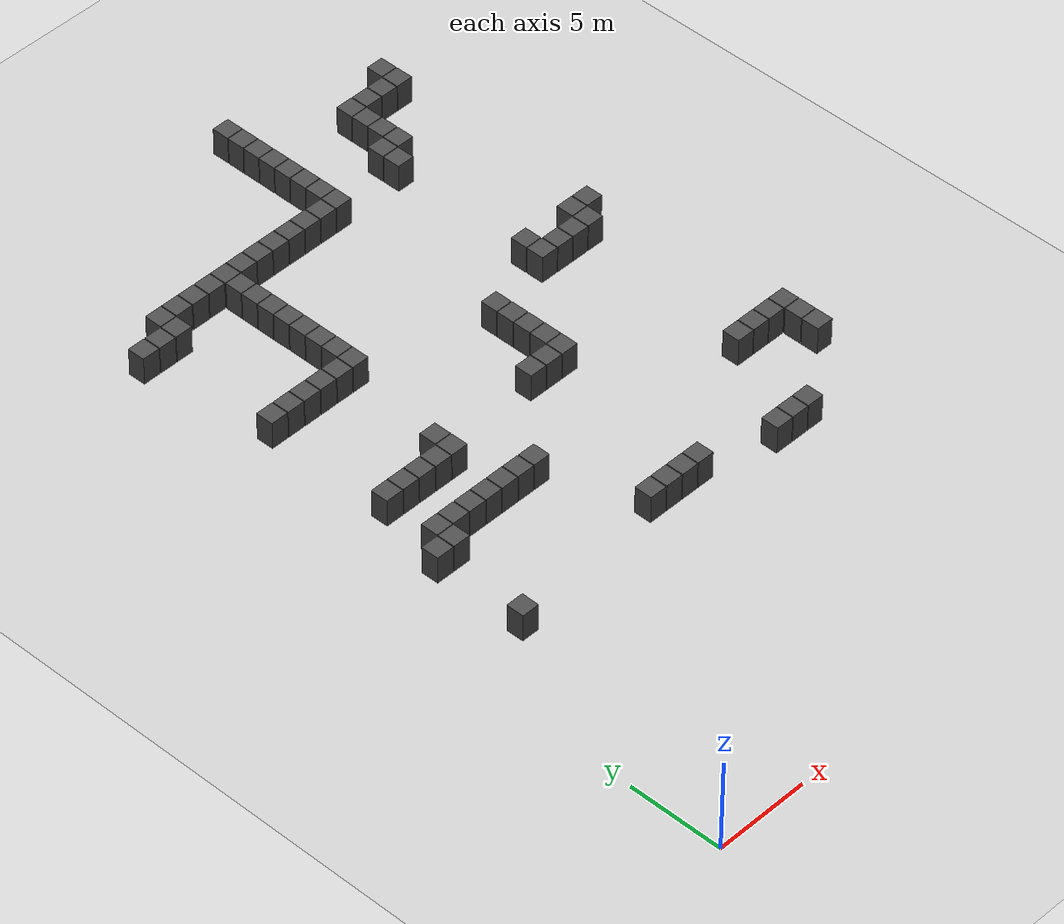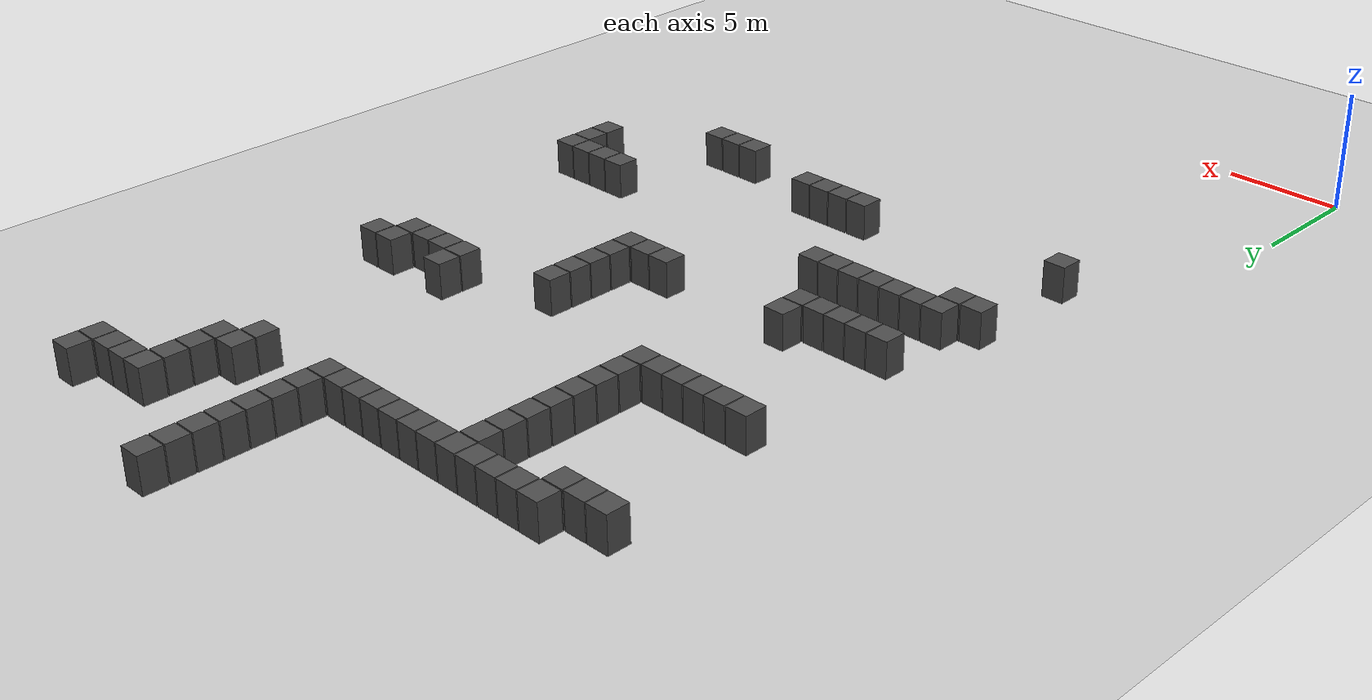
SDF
<sdf version="1.6">
 <world name="maze_world">
  <model name="ground_plane">
   <static>true</static>
   <pose>25.0 25.0 0 0 0 0</pose>
   <link name="link">
    <collision name="collision">
     <geometry><plane><normal>0 0 1</normal><size>50.0 50.0</size></plane></geometry>
    </collision>
    <visual name="visual">
     <geometry><plane><normal>0 0 1</normal><size>50.0 50.0</size></plane></geometry>
     <material><ambient>0.8 0.8 0.8 1</ambient><diffuse>0.8 0.8 0.8 1</diffuse></material>
    </visual>
   </link>
  </model>
  <model name="wall_4">
   <static>true</static>
   <pose>16.500 45.500 0.750 0 0 0</pose>
   <link name="link">
    <collision name="collision"><geometry><box><size>0.950 0.950 1.500</size></box></geometry></collision>
    <visual name="visual">
     <geometry><box><size>0.950 0.950 1.500</size></box></geometry>
     <material><ambient>0.2 0.2 0.2 1</ambient><diffuse>0.3 0.3 0.3 1</diffuse></material>
    </visual>
   </link>
  </model>
  <model name="wall_6">
   <static>true</static>
   <pose>16.500 44.500 0.750 0 0 0</pose>
   <link name="link">
    <collision name="collision"><geometry><box><size>0.950 0.950 1.500</size></box></geometry></collision>
    <visual name="visual">
     <geometry><box><size>0.950 0.950 1.500</size></box></geometry>
     <material><ambient>0.2 0.2 0.2 1</ambient><diffuse>0.3 0.3 0.3 1</diffuse></material>
    </visual>
   </link>
  </model>
  <model name="wall_8">
   <static>true</static>
   <pose>16.500 43.500 0.750 0 0 0</pose>
   <link name="link">
    <collision name="collision"><geometry><box><size>0.950 0.950 1.500</size></box></geometry></collision>
    <visual name="visual">
     <geometry><box><size>0.950 0.950 1.500</size></box></geometry>
     <material><ambient>0.2 0.2 0.2 1</ambient><diffuse>0.3 0.3 0.3 1</diffuse></material>
    </visual>
   </link>
  </model>
  <model name="wall_9">
   <static>true</static>
   <pose>24.500 43.500 0.750 0 0 0</pose>
   <link name="link">
    <collision name="collision"><geometry><box><size>0.950 0.950 1.500</size></box></geometry></collision>
    <visual name="visual">
     <geometry><box><size>0.950 0.950 1.500</size></box></geometry>
     <material><ambient>0.2 0.2 0.2 1</ambient><diffuse>0.3 0.3 0.3 1</diffuse></material>
    </visual>
   </link>
  </model>
  <model name="wall_22">
   <static>true</static>
   <pose>16.500 42.500 0.750 0 0 0</pose>
   <link name="link">
    <collision name="collision"><geometry><box><size>0.950 0.950 1.500</size></box></geometry></collision>
    <visual name="visual">
     <geometry><box><size>0.950 0.950 1.500</size></box></geometry>
     <material><ambient>0.2 0.2 0.2 1</ambient><diffuse>0.3 0.3 0.3 1</diffuse></material>
    </visual>
   </link>
  </model>
  <model name="wall_23">
   <static>true</static>
   <pose>21.500 42.500 0.750 0 0 0</pose>
   <link name="link">
    <collision name="collision"><geometry><box><size>0.950 0.950 1.500</size></box></geometry></collision>
    <visual name="visual">
     <geometry><box><size>0.950 0.950 1.500</size></box></geometry>
     <material><ambient>0.2 0.2 0.2 1</ambient><diffuse>0.3 0.3 0.3 1</diffuse></material>
    </visual>
   </link>
  </model>
  <model name="wall_24">
   <static>true</static>
   <pose>22.500 42.500 0.750 0 0 0</pose>
   <link name="link">
    <collision name="collision"><geometry><box><size>0.950 0.950 1.500</size></box></geometry></collision>
    <visual name="visual">
     <geometry><box><size>0.950 0.950 1.500</size></box></geometry>
     <material><ambient>0.2 0.2 0.2 1</ambient><diffuse>0.3 0.3 0.3 1</diffuse></material>
    </visual>
   </link>
  </model>
  <model name="wall_25">
   <static>true</static>
   <pose>23.500 42.500 0.750 0 0 0</pose>
   <link name="link">
    <collision name="collision"><geometry><box><size>0.950 0.950 1.500</size></box></geometry></collision>
    <visual name="visual">
     <geometry><box><size>0.950 0.950 1.500</size></box></geometry>
     <material><ambient>0.2 0.2 0.2 1</ambient><diffuse>0.3 0.3 0.3 1</diffuse></material>
    </visual>
   </link>
  </model>
  <model name="wall_26">
   <static>true</static>
   <pose>24.500 42.500 0.750 0 0 0</pose>
   <link name="link">
    <collision name="collision"><geometry><box><size>0.950 0.950 1.500</size></box></geometry></collision>
    <visual name="visual">
     <geometry><box><size>0.950 0.950 1.500</size></box></geometry>
     <material><ambient>0.2 0.2 0.2 1</ambient><diffuse>0.3 0.3 0.3 1</diffuse></material>
    </visual>
   </link>
  </model>
  <model name="wall_28">
   <static>true</static>
   <pose>16.500 41.500 0.750 0 0 0</pose>
   <link name="link">
    <collision name="collision"><geometry><box><size>0.950 0.950 1.500</size></box></geometry></collision>
    <visual name="visual">
     <geometry><box><size>0.950 0.950 1.500</size></box></geometry>
     <material><ambient>0.2 0.2 0.2 1</ambient><diffuse>0.3 0.3 0.3 1</diffuse></material>
    </visual>
   </link>
  </model>
  <model name="wall_29">
   <static>true</static>
   <pose>21.500 41.500 0.750 0 0 0</pose>
   <link name="link">
    <collision name="collision"><geometry><box><size>0.950 0.950 1.500</size></box></geometry></collision>
    <visual name="visual">
     <geometry><box><size>0.950 0.950 1.500</size></box></geometry>
     <material><ambient>0.2 0.2 0.2 1</ambient><diffuse>0.3 0.3 0.3 1</diffuse></material>
    </visual>
   </link>
  </model>
  <model name="wall_31">
   <static>true</static>
   <pose>16.500 40.500 0.750 0 0 0</pose>
   <link name="link">
    <collision name="collision"><geometry><box><size>0.950 0.950 1.500</size></box></geometry></collision>
    <visual name="visual">
     <geometry><box><size>0.950 0.950 1.500</size></box></geometry>
     <material><ambient>0.2 0.2 0.2 1</ambient><diffuse>0.3 0.3 0.3 1</diffuse></material>
    </visual>
   </link>
  </model>
  <model name="wall_32">
   <static>true</static>
   <pose>21.500 40.500 0.750 0 0 0</pose>
   <link name="link">
    <collision name="collision"><geometry><box><size>0.950 0.950 1.500</size></box></geometry></collision>
    <visual name="visual">
     <geometry><box><size>0.950 0.950 1.500</size></box></geometry>
     <material><ambient>0.2 0.2 0.2 1</ambient><diffuse>0.3 0.3 0.3 1</diffuse></material>
    </visual>
   </link>
  </model>
  <model name="wall_34">
   <static>true</static>
   <pose>16.500 39.500 0.750 0 0 0</pose>
   <link name="link">
    <collision name="collision"><geometry><box><size>0.950 0.950 1.500</size></box></geometry></collision>
    <visual name="visual">
     <geometry><box><size>0.950 0.950 1.500</size></box></geometry>
     <material><ambient>0.2 0.2 0.2 1</ambient><diffuse>0.3 0.3 0.3 1</diffuse></material>
    </visual>
   </link>
  </model>
  <model name="wall_35">
   <static>true</static>
   <pose>20.500 39.500 0.750 0 0 0</pose>
   <link name="link">
    <collision name="collision"><geometry><box><size>0.950 0.950 1.500</size></box></geometry></collision>
    <visual name="visual">
     <geometry><box><size>0.950 0.950 1.500</size></box></geometry>
     <material><ambient>0.2 0.2 0.2 1</ambient><diffuse>0.3 0.3 0.3 1</diffuse></material>
    </visual>
   </link>
  </model>
  <model name="wall_36">
   <static>true</static>
   <pose>21.500 39.500 0.750 0 0 0</pose>
   <link name="link">
    <collision name="collision"><geometry><box><size>0.950 0.950 1.500</size></box></geometry></collision>
    <visual name="visual">
     <geometry><box><size>0.950 0.950 1.500</size></box></geometry>
     <material><ambient>0.2 0.2 0.2 1</ambient><diffuse>0.3 0.3 0.3 1</diffuse></material>
    </visual>
   </link>
  </model>
  <model name="wall_42">
   <static>true</static>
   <pose>5.500 38.500 0.750 0 0 0</pose>
   <link name="link">
    <collision name="collision"><geometry><box><size>0.950 0.950 1.500</size></box></geometry></collision>
    <visual name="visual">
     <geometry><box><size>0.950 0.950 1.500</size></box></geometry>
     <material><ambient>0.2 0.2 0.2 1</ambient><diffuse>0.3 0.3 0.3 1</diffuse></material>
    </visual>
   </link>
  </model>
  <model name="wall_43">
   <static>true</static>
   <pose>6.500 38.500 0.750 0 0 0</pose>
   <link name="link">
    <collision name="collision"><geometry><box><size>0.950 0.950 1.500</size></box></geometry></collision>
    <visual name="visual">
     <geometry><box><size>0.950 0.950 1.500</size></box></geometry>
     <material><ambient>0.2 0.2 0.2 1</ambient><diffuse>0.3 0.3 0.3 1</diffuse></material>
    </visual>
   </link>
  </model>
  <model name="wall_44">
   <static>true</static>
   <pose>7.500 38.500 0.750 0 0 0</pose>
   <link name="link">
    <collision name="collision"><geometry><box><size>0.950 0.950 1.500</size></box></geometry></collision>
    <visual name="visual">
     <geometry><box><size>0.950 0.950 1.500</size></box></geometry>
     <material><ambient>0.2 0.2 0.2 1</ambient><diffuse>0.3 0.3 0.3 1</diffuse></material>
    </visual>
   </link>
  </model>
  <model name="wall_45">
   <static>true</static>
   <pose>8.500 38.500 0.750 0 0 0</pose>
   <link name="link">
    <collision name="collision"><geometry><box><size>0.950 0.950 1.500</size></box></geometry></collision>
    <visual name="visual">
     <geometry><box><size>0.950 0.950 1.500</size></box></geometry>
     <material><ambient>0.2 0.2 0.2 1</ambient><diffuse>0.3 0.3 0.3 1</diffuse></material>
    </visual>
   </link>
  </model>
  <model name="wall_46">
   <static>true</static>
   <pose>9.500 38.500 0.750 0 0 0</pose>
   <link name="link">
    <collision name="collision"><geometry><box><size>0.950 0.950 1.500</size></box></geometry></collision>
    <visual name="visual">
     <geometry><box><size>0.950 0.950 1.500</size></box></geometry>
     <material><ambient>0.2 0.2 0.2 1</ambient><diffuse>0.3 0.3 0.3 1</diffuse></material>
    </visual>
   </link>
  </model>
  <model name="wall_47">
   <static>true</static>
   <pose>10.500 38.500 0.750 0 0 0</pose>
   <link name="link">
    <collision name="collision"><geometry><box><size>0.950 0.950 1.500</size></box></geometry></collision>
    <visual name="visual">
     <geometry><box><size>0.950 0.950 1.500</size></box></geometry>
     <material><ambient>0.2 0.2 0.2 1</ambient><diffuse>0.3 0.3 0.3 1</diffuse></material>
    </visual>
   </link>
  </model>
  <model name="wall_48">
   <static>true</static>
   <pose>11.500 38.500 0.750 0 0 0</pose>
   <link name="link">
    <collision name="collision"><geometry><box><size>0.950 0.950 1.500</size></box></geometry></collision>
    <visual name="visual">
     <geometry><box><size>0.950 0.950 1.500</size></box></geometry>
     <material><ambient>0.2 0.2 0.2 1</ambient><diffuse>0.3 0.3 0.3 1</diffuse></material>
    </visual>
   </link>
  </model>
  <model name="wall_49">
   <static>true</static>
   <pose>12.500 38.500 0.750 0 0 0</pose>
   <link name="link">
    <collision name="collision"><geometry><box><size>0.950 0.950 1.500</size></box></geometry></collision>
    <visual name="visual">
     <geometry><box><size>0.950 0.950 1.500</size></box></geometry>
     <material><ambient>0.2 0.2 0.2 1</ambient><diffuse>0.3 0.3 0.3 1</diffuse></material>
    </visual>
   </link>
  </model>
  <model name="wall_50">
   <static>true</static>
   <pose>13.500 38.500 0.750 0 0 0</pose>
   <link name="link">
    <collision name="collision"><geometry><box><size>0.950 0.950 1.500</size></box></geometry></collision>
    <visual name="visual">
     <geometry><box><size>0.950 0.950 1.500</size></box></geometry>
     <material><ambient>0.2 0.2 0.2 1</ambient><diffuse>0.3 0.3 0.3 1</diffuse></material>
    </visual>
   </link>
  </model>
  <model name="wall_51">
   <static>true</static>
   <pose>14.500 38.500 0.750 0 0 0</pose>
   <link name="link">
    <collision name="collision"><geometry><box><size>0.950 0.950 1.500</size></box></geometry></collision>
    <visual name="visual">
     <geometry><box><size>0.950 0.950 1.500</size></box></geometry>
     <material><ambient>0.2 0.2 0.2 1</ambient><diffuse>0.3 0.3 0.3 1</diffuse></material>
    </visual>
   </link>
  </model>
  <model name="wall_52">
   <static>true</static>
   <pose>15.500 38.500 0.750 0 0 0</pose>
   <link name="link">
    <collision name="collision"><geometry><box><size>0.950 0.950 1.500</size></box></geometry></collision>
    <visual name="visual">
     <geometry><box><size>0.950 0.950 1.500</size></box></geometry>
     <material><ambient>0.2 0.2 0.2 1</ambient><diffuse>0.3 0.3 0.3 1</diffuse></material>
    </visual>
   </link>
  </model>
  <model name="wall_53">
   <static>true</static>
   <pose>16.500 38.500 0.750 0 0 0</pose>
   <link name="link">
    <collision name="collision"><geometry><box><size>0.950 0.950 1.500</size></box></geometry></collision>
    <visual name="visual">
     <geometry><box><size>0.950 0.950 1.500</size></box></geometry>
     <material><ambient>0.2 0.2 0.2 1</ambient><diffuse>0.3 0.3 0.3 1</diffuse></material>
    </visual>
   </link>
  </model>
  <model name="wall_54">
   <static>true</static>
   <pose>20.500 38.500 0.750 0 0 0</pose>
   <link name="link">
    <collision name="collision"><geometry><box><size>0.950 0.950 1.500</size></box></geometry></collision>
    <visual name="visual">
     <geometry><box><size>0.950 0.950 1.500</size></box></geometry>
     <material><ambient>0.2 0.2 0.2 1</ambient><diffuse>0.3 0.3 0.3 1</diffuse></material>
    </visual>
   </link>
  </model>
  <model name="wall_58">
   <static>true</static>
   <pose>3.500 37.500 0.750 0 0 0</pose>
   <link name="link">
    <collision name="collision"><geometry><box><size>0.950 0.950 1.500</size></box></geometry></collision>
    <visual name="visual">
     <geometry><box><size>0.950 0.950 1.500</size></box></geometry>
     <material><ambient>0.2 0.2 0.2 1</ambient><diffuse>0.3 0.3 0.3 1</diffuse></material>
    </visual>
   </link>
  </model>
  <model name="wall_59">
   <static>true</static>
   <pose>4.500 37.500 0.750 0 0 0</pose>
   <link name="link">
    <collision name="collision"><geometry><box><size>0.950 0.950 1.500</size></box></geometry></collision>
    <visual name="visual">
     <geometry><box><size>0.950 0.950 1.500</size></box></geometry>
     <material><ambient>0.2 0.2 0.2 1</ambient><diffuse>0.3 0.3 0.3 1</diffuse></material>
    </visual>
   </link>
  </model>
  <model name="wall_60">
   <static>true</static>
   <pose>5.500 37.500 0.750 0 0 0</pose>
   <link name="link">
    <collision name="collision"><geometry><box><size>0.950 0.950 1.500</size></box></geometry></collision>
    <visual name="visual">
     <geometry><box><size>0.950 0.950 1.500</size></box></geometry>
     <material><ambient>0.2 0.2 0.2 1</ambient><diffuse>0.3 0.3 0.3 1</diffuse></material>
    </visual>
   </link>
  </model>
  <model name="wall_61">
   <static>true</static>
   <pose>9.500 37.500 0.750 0 0 0</pose>
   <link name="link">
    <collision name="collision"><geometry><box><size>0.950 0.950 1.500</size></box></geometry></collision>
    <visual name="visual">
     <geometry><box><size>0.950 0.950 1.500</size></box></geometry>
     <material><ambient>0.2 0.2 0.2 1</ambient><diffuse>0.3 0.3 0.3 1</diffuse></material>
    </visual>
   </link>
  </model>
  <model name="wall_66">
   <static>true</static>
   <pose>9.500 36.500 0.750 0 0 0</pose>
   <link name="link">
    <collision name="collision"><geometry><box><size>0.950 0.950 1.500</size></box></geometry></collision>
    <visual name="visual">
     <geometry><box><size>0.950 0.950 1.500</size></box></geometry>
     <material><ambient>0.2 0.2 0.2 1</ambient><diffuse>0.3 0.3 0.3 1</diffuse></material>
    </visual>
   </link>
  </model>
  <model name="wall_70">
   <static>true</static>
   <pose>9.500 35.500 0.750 0 0 0</pose>
   <link name="link">
    <collision name="collision"><geometry><box><size>0.950 0.950 1.500</size></box></geometry></collision>
    <visual name="visual">
     <geometry><box><size>0.950 0.950 1.500</size></box></geometry>
     <material><ambient>0.2 0.2 0.2 1</ambient><diffuse>0.3 0.3 0.3 1</diffuse></material>
    </visual>
   </link>
  </model>
  <model name="wall_79">
   <static>true</static>
   <pose>9.500 34.500 0.750 0 0 0</pose>
   <link name="link">
    <collision name="collision"><geometry><box><size>0.950 0.950 1.500</size></box></geometry></collision>
    <visual name="visual">
     <geometry><box><size>0.950 0.950 1.500</size></box></geometry>
     <material><ambient>0.2 0.2 0.2 1</ambient><diffuse>0.3 0.3 0.3 1</diffuse></material>
    </visual>
   </link>
  </model>
  <model name="wall_81">
   <static>true</static>
   <pose>9.500 33.500 0.750 0 0 0</pose>
   <link name="link">
    <collision name="collision"><geometry><box><size>0.950 0.950 1.500</size></box></geometry></collision>
    <visual name="visual">
     <geometry><box><size>0.950 0.950 1.500</size></box></geometry>
     <material><ambient>0.2 0.2 0.2 1</ambient><diffuse>0.3 0.3 0.3 1</diffuse></material>
    </visual>
   </link>
  </model>
  <model name="wall_83">
   <static>true</static>
   <pose>9.500 32.500 0.750 0 0 0</pose>
   <link name="link">
    <collision name="collision"><geometry><box><size>0.950 0.950 1.500</size></box></geometry></collision>
    <visual name="visual">
     <geometry><box><size>0.950 0.950 1.500</size></box></geometry>
     <material><ambient>0.2 0.2 0.2 1</ambient><diffuse>0.3 0.3 0.3 1</diffuse></material>
    </visual>
   </link>
  </model>
  <model name="wall_85">
   <static>true</static>
   <pose>9.500 31.500 0.750 0 0 0</pose>
   <link name="link">
    <collision name="collision"><geometry><box><size>0.950 0.950 1.500</size></box></geometry></collision>
    <visual name="visual">
     <geometry><box><size>0.950 0.950 1.500</size></box></geometry>
     <material><ambient>0.2 0.2 0.2 1</ambient><diffuse>0.3 0.3 0.3 1</diffuse></material>
    </visual>
   </link>
  </model>
  <model name="wall_92">
   <static>true</static>
   <pose>4.500 30.500 0.750 0 0 0</pose>
   <link name="link">
    <collision name="collision"><geometry><box><size>0.950 0.950 1.500</size></box></geometry></collision>
    <visual name="visual">
     <geometry><box><size>0.950 0.950 1.500</size></box></geometry>
     <material><ambient>0.2 0.2 0.2 1</ambient><diffuse>0.3 0.3 0.3 1</diffuse></material>
    </visual>
   </link>
  </model>
  <model name="wall_93">
   <static>true</static>
   <pose>5.500 30.500 0.750 0 0 0</pose>
   <link name="link">
    <collision name="collision"><geometry><box><size>0.950 0.950 1.500</size></box></geometry></collision>
    <visual name="visual">
     <geometry><box><size>0.950 0.950 1.500</size></box></geometry>
     <material><ambient>0.2 0.2 0.2 1</ambient><diffuse>0.3 0.3 0.3 1</diffuse></material>
    </visual>
   </link>
  </model>
  <model name="wall_94">
   <static>true</static>
   <pose>6.500 30.500 0.750 0 0 0</pose>
   <link name="link">
    <collision name="collision"><geometry><box><size>0.950 0.950 1.500</size></box></geometry></collision>
    <visual name="visual">
     <geometry><box><size>0.950 0.950 1.500</size></box></geometry>
     <material><ambient>0.2 0.2 0.2 1</ambient><diffuse>0.3 0.3 0.3 1</diffuse></material>
    </visual>
   </link>
  </model>
  <model name="wall_95">
   <static>true</static>
   <pose>7.500 30.500 0.750 0 0 0</pose>
   <link name="link">
    <collision name="collision"><geometry><box><size>0.950 0.950 1.500</size></box></geometry></collision>
    <visual name="visual">
     <geometry><box><size>0.950 0.950 1.500</size></box></geometry>
     <material><ambient>0.2 0.2 0.2 1</ambient><diffuse>0.3 0.3 0.3 1</diffuse></material>
    </visual>
   </link>
  </model>
  <model name="wall_96">
   <static>true</static>
   <pose>8.500 30.500 0.750 0 0 0</pose>
   <link name="link">
    <collision name="collision"><geometry><box><size>0.950 0.950 1.500</size></box></geometry></collision>
    <visual name="visual">
     <geometry><box><size>0.950 0.950 1.500</size></box></geometry>
     <material><ambient>0.2 0.2 0.2 1</ambient><diffuse>0.3 0.3 0.3 1</diffuse></material>
    </visual>
   </link>
  </model>
  <model name="wall_97">
   <static>true</static>
   <pose>9.500 30.500 0.750 0 0 0</pose>
   <link name="link">
    <collision name="collision"><geometry><box><size>0.950 0.950 1.500</size></box></geometry></collision>
    <visual name="visual">
     <geometry><box><size>0.950 0.950 1.500</size></box></geometry>
     <material><ambient>0.2 0.2 0.2 1</ambient><diffuse>0.3 0.3 0.3 1</diffuse></material>
    </visual>
   </link>
  </model>
  <model name="wall_98">
   <static>true</static>
   <pose>20.500 30.500 0.750 0 0 0</pose>
   <link name="link">
    <collision name="collision"><geometry><box><size>0.950 0.950 1.500</size></box></geometry></collision>
    <visual name="visual">
     <geometry><box><size>0.950 0.950 1.500</size></box></geometry>
     <material><ambient>0.2 0.2 0.2 1</ambient><diffuse>0.3 0.3 0.3 1</diffuse></material>
    </visual>
   </link>
  </model>
  <model name="wall_99">
   <static>true</static>
   <pose>23.500 30.500 0.750 0 0 0</pose>
   <link name="link">
    <collision name="collision"><geometry><box><size>0.950 0.950 1.500</size></box></geometry></collision>
    <visual name="visual">
     <geometry><box><size>0.950 0.950 1.500</size></box></geometry>
     <material><ambient>0.2 0.2 0.2 1</ambient><diffuse>0.3 0.3 0.3 1</diffuse></material>
    </visual>
   </link>
  </model>
  <model name="wall_100">
   <static>true</static>
   <pose>24.500 30.500 0.750 0 0 0</pose>
   <link name="link">
    <collision name="collision"><geometry><box><size>0.950 0.950 1.500</size></box></geometry></collision>
    <visual name="visual">
     <geometry><box><size>0.950 0.950 1.500</size></box></geometry>
     <material><ambient>0.2 0.2 0.2 1</ambient><diffuse>0.3 0.3 0.3 1</diffuse></material>
    </visual>
   </link>
  </model>
  <model name="wall_104">
   <static>true</static>
   <pose>20.500 29.500 0.750 0 0 0</pose>
   <link name="link">
    <collision name="collision"><geometry><box><size>0.950 0.950 1.500</size></box></geometry></collision>
    <visual name="visual">
     <geometry><box><size>0.950 0.950 1.500</size></box></geometry>
     <material><ambient>0.2 0.2 0.2 1</ambient><diffuse>0.3 0.3 0.3 1</diffuse></material>
    </visual>
   </link>
  </model>
  <model name="wall_105">
   <static>true</static>
   <pose>21.500 29.500 0.750 0 0 0</pose>
   <link name="link">
    <collision name="collision"><geometry><box><size>0.950 0.950 1.500</size></box></geometry></collision>
    <visual name="visual">
     <geometry><box><size>0.950 0.950 1.500</size></box></geometry>
     <material><ambient>0.2 0.2 0.2 1</ambient><diffuse>0.3 0.3 0.3 1</diffuse></material>
    </visual>
   </link>
  </model>
  <model name="wall_106">
   <static>true</static>
   <pose>22.500 29.500 0.750 0 0 0</pose>
   <link name="link">
    <collision name="collision"><geometry><box><size>0.950 0.950 1.500</size></box></geometry></collision>
    <visual name="visual">
     <geometry><box><size>0.950 0.950 1.500</size></box></geometry>
     <material><ambient>0.2 0.2 0.2 1</ambient><diffuse>0.3 0.3 0.3 1</diffuse></material>
    </visual>
   </link>
  </model>
  <model name="wall_107">
   <static>true</static>
   <pose>23.500 29.500 0.750 0 0 0</pose>
   <link name="link">
    <collision name="collision"><geometry><box><size>0.950 0.950 1.500</size></box></geometry></collision>
    <visual name="visual">
     <geometry><box><size>0.950 0.950 1.500</size></box></geometry>
     <material><ambient>0.2 0.2 0.2 1</ambient><diffuse>0.3 0.3 0.3 1</diffuse></material>
    </visual>
   </link>
  </model>
  <model name="wall_108">
   <static>true</static>
   <pose>16.500 28.500 0.750 0 0 0</pose>
   <link name="link">
    <collision name="collision"><geometry><box><size>0.950 0.950 1.500</size></box></geometry></collision>
    <visual name="visual">
     <geometry><box><size>0.950 0.950 1.500</size></box></geometry>
     <material><ambient>0.2 0.2 0.2 1</ambient><diffuse>0.3 0.3 0.3 1</diffuse></material>
    </visual>
   </link>
  </model>
  <model name="wall_109">
   <static>true</static>
   <pose>16.500 27.500 0.750 0 0 0</pose>
   <link name="link">
    <collision name="collision"><geometry><box><size>0.950 0.950 1.500</size></box></geometry></collision>
    <visual name="visual">
     <geometry><box><size>0.950 0.950 1.500</size></box></geometry>
     <material><ambient>0.2 0.2 0.2 1</ambient><diffuse>0.3 0.3 0.3 1</diffuse></material>
    </visual>
   </link>
  </model>
  <model name="wall_117">
   <static>true</static>
   <pose>16.500 26.500 0.750 0 0 0</pose>
   <link name="link">
    <collision name="collision"><geometry><box><size>0.950 0.950 1.500</size></box></geometry></collision>
    <visual name="visual">
     <geometry><box><size>0.950 0.950 1.500</size></box></geometry>
     <material><ambient>0.2 0.2 0.2 1</ambient><diffuse>0.3 0.3 0.3 1</diffuse></material>
    </visual>
   </link>
  </model>
  <model name="wall_119">
   <static>true</static>
   <pose>16.500 25.500 0.750 0 0 0</pose>
   <link name="link">
    <collision name="collision"><geometry><box><size>0.950 0.950 1.500</size></box></geometry></collision>
    <visual name="visual">
     <geometry><box><size>0.950 0.950 1.500</size></box></geometry>
     <material><ambient>0.2 0.2 0.2 1</ambient><diffuse>0.3 0.3 0.3 1</diffuse></material>
    </visual>
   </link>
  </model>
  <model name="wall_121">
   <static>true</static>
   <pose>8.500 24.500 0.750 0 0 0</pose>
   <link name="link">
    <collision name="collision"><geometry><box><size>0.950 0.950 1.500</size></box></geometry></collision>
    <visual name="visual">
     <geometry><box><size>0.950 0.950 1.500</size></box></geometry>
     <material><ambient>0.2 0.2 0.2 1</ambient><diffuse>0.3 0.3 0.3 1</diffuse></material>
    </visual>
   </link>
  </model>
  <model name="wall_122">
   <static>true</static>
   <pose>14.500 24.500 0.750 0 0 0</pose>
   <link name="link">
    <collision name="collision"><geometry><box><size>0.950 0.950 1.500</size></box></geometry></collision>
    <visual name="visual">
     <geometry><box><size>0.950 0.950 1.500</size></box></geometry>
     <material><ambient>0.2 0.2 0.2 1</ambient><diffuse>0.3 0.3 0.3 1</diffuse></material>
    </visual>
   </link>
  </model>
  <model name="wall_123">
   <static>true</static>
   <pose>15.500 24.500 0.750 0 0 0</pose>
   <link name="link">
    <collision name="collision"><geometry><box><size>0.950 0.950 1.500</size></box></geometry></collision>
    <visual name="visual">
     <geometry><box><size>0.950 0.950 1.500</size></box></geometry>
     <material><ambient>0.2 0.2 0.2 1</ambient><diffuse>0.3 0.3 0.3 1</diffuse></material>
    </visual>
   </link>
  </model>
  <model name="wall_124">
   <static>true</static>
   <pose>16.500 24.500 0.750 0 0 0</pose>
   <link name="link">
    <collision name="collision"><geometry><box><size>0.950 0.950 1.500</size></box></geometry></collision>
    <visual name="visual">
     <geometry><box><size>0.950 0.950 1.500</size></box></geometry>
     <material><ambient>0.2 0.2 0.2 1</ambient><diffuse>0.3 0.3 0.3 1</diffuse></material>
    </visual>
   </link>
  </model>
  <model name="wall_130">
   <static>true</static>
   <pose>4.500 23.500 0.750 0 0 0</pose>
   <link name="link">
    <collision name="collision"><geometry><box><size>0.950 0.950 1.500</size></box></geometry></collision>
    <visual name="visual">
     <geometry><box><size>0.950 0.950 1.500</size></box></geometry>
     <material><ambient>0.2 0.2 0.2 1</ambient><diffuse>0.3 0.3 0.3 1</diffuse></material>
    </visual>
   </link>
  </model>
  <model name="wall_131">
   <static>true</static>
   <pose>5.500 23.500 0.750 0 0 0</pose>
   <link name="link">
    <collision name="collision"><geometry><box><size>0.950 0.950 1.500</size></box></geometry></collision>
    <visual name="visual">
     <geometry><box><size>0.950 0.950 1.500</size></box></geometry>
     <material><ambient>0.2 0.2 0.2 1</ambient><diffuse>0.3 0.3 0.3 1</diffuse></material>
    </visual>
   </link>
  </model>
  <model name="wall_132">
   <static>true</static>
   <pose>6.500 23.500 0.750 0 0 0</pose>
   <link name="link">
    <collision name="collision"><geometry><box><size>0.950 0.950 1.500</size></box></geometry></collision>
    <visual name="visual">
     <geometry><box><size>0.950 0.950 1.500</size></box></geometry>
     <material><ambient>0.2 0.2 0.2 1</ambient><diffuse>0.3 0.3 0.3 1</diffuse></material>
    </visual>
   </link>
  </model>
  <model name="wall_133">
   <static>true</static>
   <pose>7.500 23.500 0.750 0 0 0</pose>
   <link name="link">
    <collision name="collision"><geometry><box><size>0.950 0.950 1.500</size></box></geometry></collision>
    <visual name="visual">
     <geometry><box><size>0.950 0.950 1.500</size></box></geometry>
     <material><ambient>0.2 0.2 0.2 1</ambient><diffuse>0.3 0.3 0.3 1</diffuse></material>
    </visual>
   </link>
  </model>
  <model name="wall_134">
   <static>true</static>
   <pose>8.500 23.500 0.750 0 0 0</pose>
   <link name="link">
    <collision name="collision"><geometry><box><size>0.950 0.950 1.500</size></box></geometry></collision>
    <visual name="visual">
     <geometry><box><size>0.950 0.950 1.500</size></box></geometry>
     <material><ambient>0.2 0.2 0.2 1</ambient><diffuse>0.3 0.3 0.3 1</diffuse></material>
    </visual>
   </link>
  </model>
  <model name="wall_135">
   <static>true</static>
   <pose>4.500 20.500 0.750 0 0 0</pose>
   <link name="link">
    <collision name="collision"><geometry><box><size>0.950 0.950 1.500</size></box></geometry></collision>
    <visual name="visual">
     <geometry><box><size>0.950 0.950 1.500</size></box></geometry>
     <material><ambient>0.2 0.2 0.2 1</ambient><diffuse>0.3 0.3 0.3 1</diffuse></material>
    </visual>
   </link>
  </model>
  <model name="wall_136">
   <static>true</static>
   <pose>5.500 20.500 0.750 0 0 0</pose>
   <link name="link">
    <collision name="collision"><geometry><box><size>0.950 0.950 1.500</size></box></geometry></collision>
    <visual name="visual">
     <geometry><box><size>0.950 0.950 1.500</size></box></geometry>
     <material><ambient>0.2 0.2 0.2 1</ambient><diffuse>0.3 0.3 0.3 1</diffuse></material>
    </visual>
   </link>
  </model>
  <model name="wall_137">
   <static>true</static>
   <pose>6.500 20.500 0.750 0 0 0</pose>
   <link name="link">
    <collision name="collision"><geometry><box><size>0.950 0.950 1.500</size></box></geometry></collision>
    <visual name="visual">
     <geometry><box><size>0.950 0.950 1.500</size></box></geometry>
     <material><ambient>0.2 0.2 0.2 1</ambient><diffuse>0.3 0.3 0.3 1</diffuse></material>
    </visual>
   </link>
  </model>
  <model name="wall_138">
   <static>true</static>
   <pose>7.500 20.500 0.750 0 0 0</pose>
   <link name="link">
    <collision name="collision"><geometry><box><size>0.950 0.950 1.500</size></box></geometry></collision>
    <visual name="visual">
     <geometry><box><size>0.950 0.950 1.500</size></box></geometry>
     <material><ambient>0.2 0.2 0.2 1</ambient><diffuse>0.3 0.3 0.3 1</diffuse></material>
    </visual>
   </link>
  </model>
  <model name="wall_139">
   <static>true</static>
   <pose>8.500 20.500 0.750 0 0 0</pose>
   <link name="link">
    <collision name="collision"><geometry><box><size>0.950 0.950 1.500</size></box></geometry></collision>
    <visual name="visual">
     <geometry><box><size>0.950 0.950 1.500</size></box></geometry>
     <material><ambient>0.2 0.2 0.2 1</ambient><diffuse>0.3 0.3 0.3 1</diffuse></material>
    </visual>
   </link>
  </model>
  <model name="wall_140">
   <static>true</static>
   <pose>9.500 20.500 0.750 0 0 0</pose>
   <link name="link">
    <collision name="collision"><geometry><box><size>0.950 0.950 1.500</size></box></geometry></collision>
    <visual name="visual">
     <geometry><box><size>0.950 0.950 1.500</size></box></geometry>
     <material><ambient>0.2 0.2 0.2 1</ambient><diffuse>0.3 0.3 0.3 1</diffuse></material>
    </visual>
   </link>
  </model>
  <model name="wall_141">
   <static>true</static>
   <pose>10.500 20.500 0.750 0 0 0</pose>
   <link name="link">
    <collision name="collision"><geometry><box><size>0.950 0.950 1.500</size></box></geometry></collision>
    <visual name="visual">
     <geometry><box><size>0.950 0.950 1.500</size></box></geometry>
     <material><ambient>0.2 0.2 0.2 1</ambient><diffuse>0.3 0.3 0.3 1</diffuse></material>
    </visual>
   </link>
  </model>
  <model name="wall_142">
   <static>true</static>
   <pose>3.500 19.500 0.750 0 0 0</pose>
   <link name="link">
    <collision name="collision"><geometry><box><size>0.950 0.950 1.500</size></box></geometry></collision>
    <visual name="visual">
     <geometry><box><size>0.950 0.950 1.500</size></box></geometry>
     <material><ambient>0.2 0.2 0.2 1</ambient><diffuse>0.3 0.3 0.3 1</diffuse></material>
    </visual>
   </link>
  </model>
  <model name="wall_143">
   <static>true</static>
   <pose>4.500 19.500 0.750 0 0 0</pose>
   <link name="link">
    <collision name="collision"><geometry><box><size>0.950 0.950 1.500</size></box></geometry></collision>
    <visual name="visual">
     <geometry><box><size>0.950 0.950 1.500</size></box></geometry>
     <material><ambient>0.2 0.2 0.2 1</ambient><diffuse>0.3 0.3 0.3 1</diffuse></material>
    </visual>
   </link>
  </model>
  <model name="wall_144">
   <static>true</static>
   <pose>22.500 19.500 0.750 0 0 0</pose>
   <link name="link">
    <collision name="collision"><geometry><box><size>0.950 0.950 1.500</size></box></geometry></collision>
    <visual name="visual">
     <geometry><box><size>0.950 0.950 1.500</size></box></geometry>
     <material><ambient>0.2 0.2 0.2 1</ambient><diffuse>0.3 0.3 0.3 1</diffuse></material>
    </visual>
   </link>
  </model>
  <model name="wall_145">
   <static>true</static>
   <pose>23.500 19.500 0.750 0 0 0</pose>
   <link name="link">
    <collision name="collision"><geometry><box><size>0.950 0.950 1.500</size></box></geometry></collision>
    <visual name="visual">
     <geometry><box><size>0.950 0.950 1.500</size></box></geometry>
     <material><ambient>0.2 0.2 0.2 1</ambient><diffuse>0.3 0.3 0.3 1</diffuse></material>
    </visual>
   </link>
  </model>
  <model name="wall_146">
   <static>true</static>
   <pose>24.500 19.500 0.750 0 0 0</pose>
   <link name="link">
    <collision name="collision"><geometry><box><size>0.950 0.950 1.500</size></box></geometry></collision>
    <visual name="visual">
     <geometry><box><size>0.950 0.950 1.500</size></box></geometry>
     <material><ambient>0.2 0.2 0.2 1</ambient><diffuse>0.3 0.3 0.3 1</diffuse></material>
    </visual>
   </link>
  </model>
  <model name="wall_147">
   <static>true</static>
   <pose>25.500 19.500 0.750 0 0 0</pose>
   <link name="link">
    <collision name="collision"><geometry><box><size>0.950 0.950 1.500</size></box></geometry></collision>
    <visual name="visual">
     <geometry><box><size>0.950 0.950 1.500</size></box></geometry>
     <material><ambient>0.2 0.2 0.2 1</ambient><diffuse>0.3 0.3 0.3 1</diffuse></material>
    </visual>
   </link>
  </model>
  <model name="wall_151">
   <static>true</static>
   <pose>25.500 18.500 0.750 0 0 0</pose>
   <link name="link">
    <collision name="collision"><geometry><box><size>0.950 0.950 1.500</size></box></geometry></collision>
    <visual name="visual">
     <geometry><box><size>0.950 0.950 1.500</size></box></geometry>
     <material><ambient>0.2 0.2 0.2 1</ambient><diffuse>0.3 0.3 0.3 1</diffuse></material>
    </visual>
   </link>
  </model>
  <model name="wall_160">
   <static>true</static>
   <pose>25.500 17.500 0.750 0 0 0</pose>
   <link name="link">
    <collision name="collision"><geometry><box><size>0.950 0.950 1.500</size></box></geometry></collision>
    <visual name="visual">
     <geometry><box><size>0.950 0.950 1.500</size></box></geometry>
     <material><ambient>0.2 0.2 0.2 1</ambient><diffuse>0.3 0.3 0.3 1</diffuse></material>
    </visual>
   </link>
  </model>
  <model name="wall_166">
   <static>true</static>
   <pose>12.500 15.500 0.750 0 0 0</pose>
   <link name="link">
    <collision name="collision"><geometry><box><size>0.950 0.950 1.500</size></box></geometry></collision>
    <visual name="visual">
     <geometry><box><size>0.950 0.950 1.500</size></box></geometry>
     <material><ambient>0.2 0.2 0.2 1</ambient><diffuse>0.3 0.3 0.3 1</diffuse></material>
    </visual>
   </link>
  </model>
  <model name="wall_167">
   <static>true</static>
   <pose>13.500 15.500 0.750 0 0 0</pose>
   <link name="link">
    <collision name="collision"><geometry><box><size>0.950 0.950 1.500</size></box></geometry></collision>
    <visual name="visual">
     <geometry><box><size>0.950 0.950 1.500</size></box></geometry>
     <material><ambient>0.2 0.2 0.2 1</ambient><diffuse>0.3 0.3 0.3 1</diffuse></material>
    </visual>
   </link>
  </model>
  <model name="wall_168">
   <static>true</static>
   <pose>14.500 15.500 0.750 0 0 0</pose>
   <link name="link">
    <collision name="collision"><geometry><box><size>0.950 0.950 1.500</size></box></geometry></collision>
    <visual name="visual">
     <geometry><box><size>0.950 0.950 1.500</size></box></geometry>
     <material><ambient>0.2 0.2 0.2 1</ambient><diffuse>0.3 0.3 0.3 1</diffuse></material>
    </visual>
   </link>
  </model>
  <model name="wall_169">
   <static>true</static>
   <pose>15.500 15.500 0.750 0 0 0</pose>
   <link name="link">
    <collision name="collision"><geometry><box><size>0.950 0.950 1.500</size></box></geometry></collision>
    <visual name="visual">
     <geometry><box><size>0.950 0.950 1.500</size></box></geometry>
     <material><ambient>0.2 0.2 0.2 1</ambient><diffuse>0.3 0.3 0.3 1</diffuse></material>
    </visual>
   </link>
  </model>
  <model name="wall_171">
   <static>true</static>
   <pose>3.500 14.500 0.750 0 0 0</pose>
   <link name="link">
    <collision name="collision"><geometry><box><size>0.950 0.950 1.500</size></box></geometry></collision>
    <visual name="visual">
     <geometry><box><size>0.950 0.950 1.500</size></box></geometry>
     <material><ambient>0.2 0.2 0.2 1</ambient><diffuse>0.3 0.3 0.3 1</diffuse></material>
    </visual>
   </link>
  </model>
  <model name="wall_172">
   <static>true</static>
   <pose>19.500 14.500 0.750 0 0 0</pose>
   <link name="link">
    <collision name="collision"><geometry><box><size>0.950 0.950 1.500</size></box></geometry></collision>
    <visual name="visual">
     <geometry><box><size>0.950 0.950 1.500</size></box></geometry>
     <material><ambient>0.2 0.2 0.2 1</ambient><diffuse>0.3 0.3 0.3 1</diffuse></material>
    </visual>
   </link>
  </model>
  <model name="wall_173">
   <static>true</static>
   <pose>20.500 14.500 0.750 0 0 0</pose>
   <link name="link">
    <collision name="collision"><geometry><box><size>0.950 0.950 1.500</size></box></geometry></collision>
    <visual name="visual">
     <geometry><box><size>0.950 0.950 1.500</size></box></geometry>
     <material><ambient>0.2 0.2 0.2 1</ambient><diffuse>0.3 0.3 0.3 1</diffuse></material>
    </visual>
   </link>
  </model>
  <model name="wall_174">
   <static>true</static>
   <pose>21.500 14.500 0.750 0 0 0</pose>
   <link name="link">
    <collision name="collision"><geometry><box><size>0.950 0.950 1.500</size></box></geometry></collision>
    <visual name="visual">
     <geometry><box><size>0.950 0.950 1.500</size></box></geometry>
     <material><ambient>0.2 0.2 0.2 1</ambient><diffuse>0.3 0.3 0.3 1</diffuse></material>
    </visual>
   </link>
  </model>
 </world>
</sdf>
